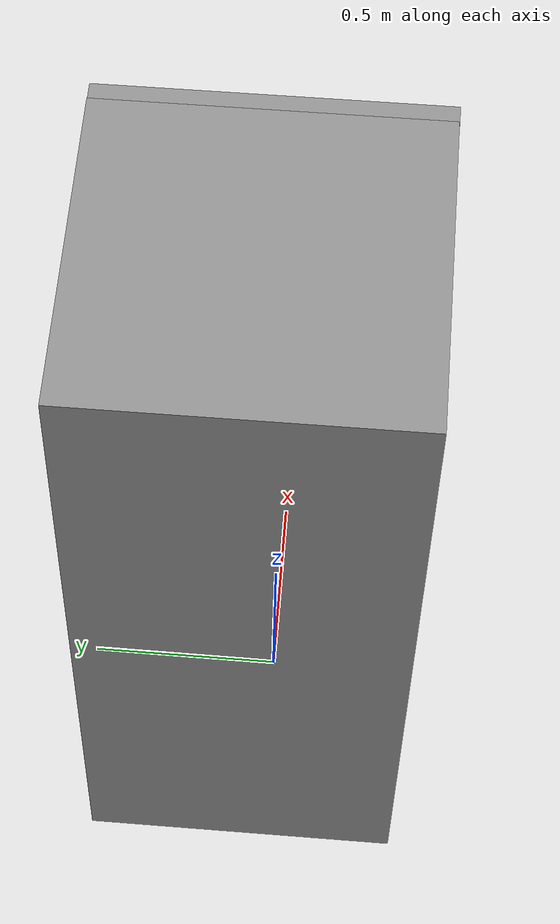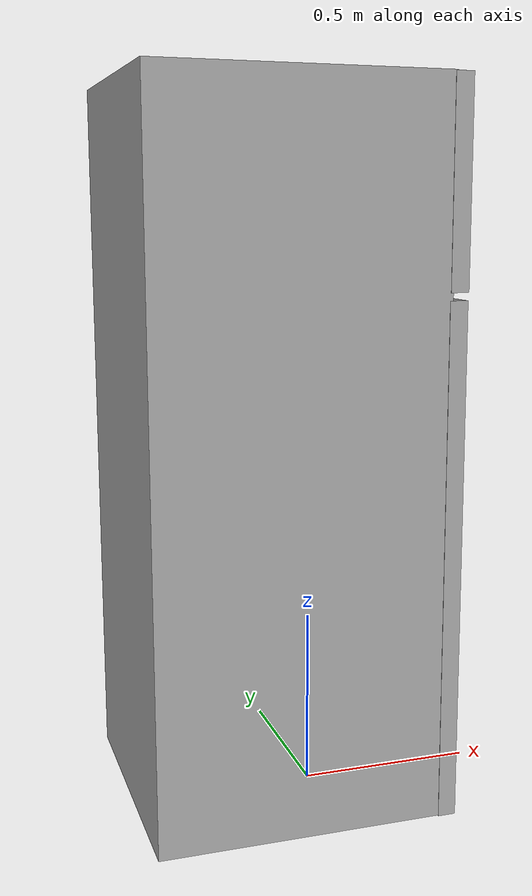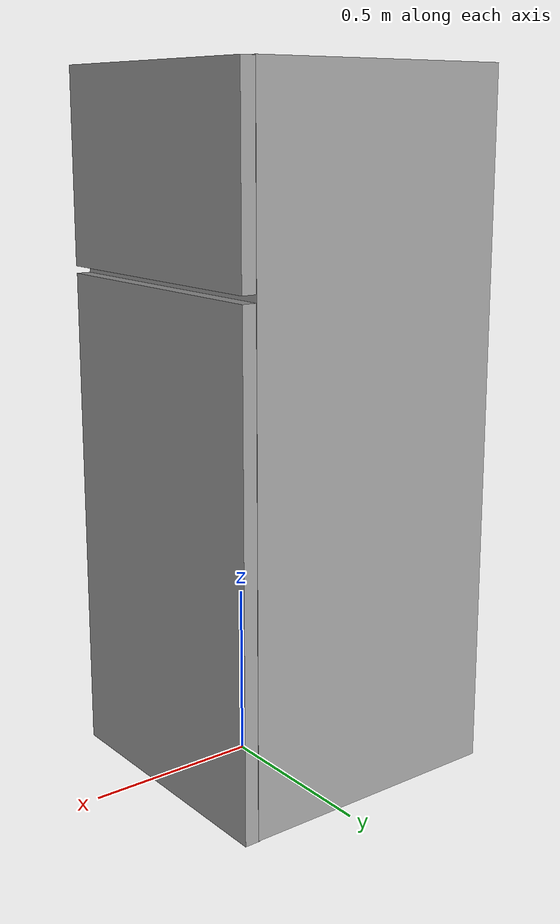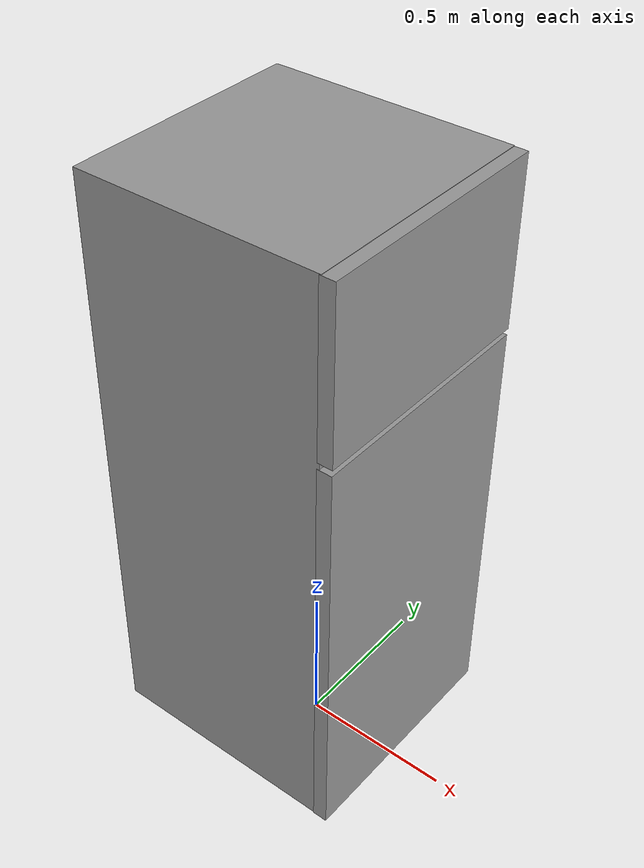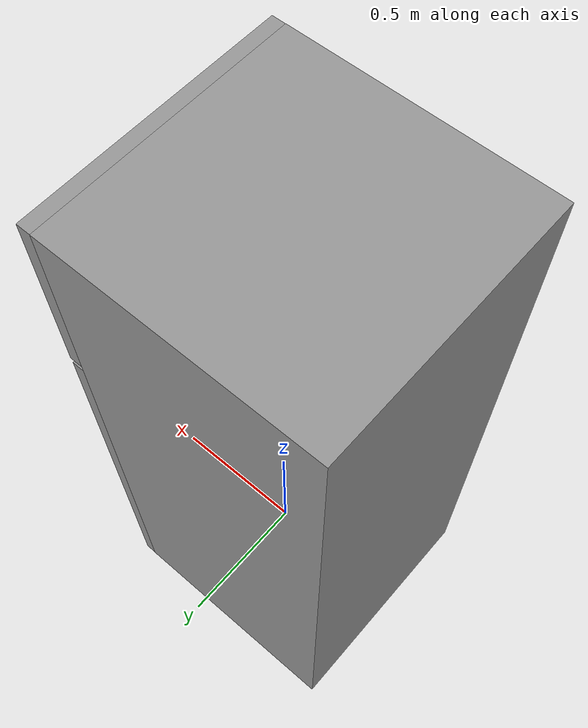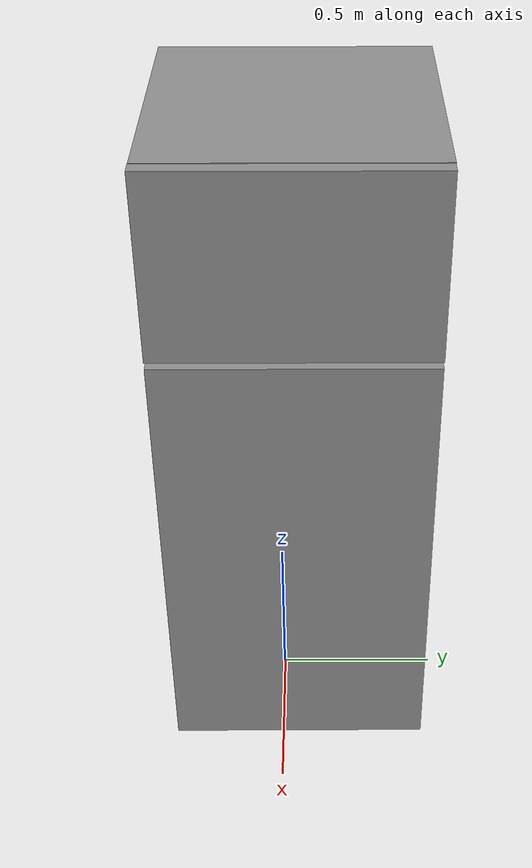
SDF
<?xml version='1.0'?>
<sdf version='1.7'>
  <model name='my_fridge'>
    <link name='link'>
      <inertial>
        <mass>1</mass>
        <inertia>
          <ixx>0.166667</ixx>
          <ixy>0</ixy>
          <ixz>0</ixz>
          <iyy>0.166667</iyy>
          <iyz>0</iyz>
          <izz>0.166667</izz>
        </inertia>
        <pose>0 0 0 0 -0 0</pose>
      </inertial>
      <self_collide>0</self_collide>
      <enable_wind>0</enable_wind>
      <kinematic>0</kinematic>
      <pose>-0.12412 0.053369 0.101591 0 -0 0</pose>
      <gravity>1</gravity>
      <visual name='visual'>
        <geometry>
          <box>
            <size>0.8 0.8 2</size>
          </box>
        </geometry>
        <material>
          <script>
            <name>Gazebo/Grey</name>
            <uri>file://media/materials/scripts/gazebo.material</uri>
          </script>
          <shader type='pixel'>
            <normal_map>__default__</normal_map>
          </shader>
          <ambient>0.9 0.9 0.9 1</ambient>
          <diffuse>0.9 0.9 0.9 1</diffuse>
          <specular>0.01 0.01 0.01 1</specular>
          <emissive>0 0 0 1</emissive>
        </material>
        <pose>0 0 0.9 0 -0 0</pose>
        <transparency>0</transparency>
        <cast_shadows>1</cast_shadows>
      </visual>
      <collision name='collision'>
        <laser_retro>0</laser_retro>
        <max_contacts>10</max_contacts>
        <pose>0 0 0.9 0 -0 0</pose>
        <geometry>
          <box>
            <size>0.8 0.8 2</size>
          </box>
        </geometry>
        <surface>
          <friction>
            <ode>
              <mu>1</mu>
              <mu2>1</mu2>
              <fdir1>0 0 0</fdir1>
              <slip1>0</slip1>
              <slip2>0</slip2>
            </ode>
            <torsional>
              <coefficient>1</coefficient>
              <patch_radius>0</patch_radius>
              <surface_radius>0</surface_radius>
              <use_patch_radius>1</use_patch_radius>
              <ode>
                <slip>0</slip>
              </ode>
            </torsional>
          </friction>
          <bounce>
            <restitution_coefficient>0</restitution_coefficient>
            <threshold>1e+06</threshold>
          </bounce>
          <contact>
            <collide_without_contact>0</collide_without_contact>
            <collide_without_contact_bitmask>1</collide_without_contact_bitmask>
            <collide_bitmask>1</collide_bitmask>
            <ode>
              <soft_cfm>0</soft_cfm>
              <soft_erp>0.2</soft_erp>
              <kp>1e+13</kp>
              <kd>1</kd>
              <max_vel>0.01</max_vel>
              <min_depth>0</min_depth>
            </ode>
            <bullet>
              <split_impulse>1</split_impulse>
              <split_impulse_penetration_threshold>-0.01</split_impulse_penetration_threshold>
              <soft_cfm>0</soft_cfm>
              <soft_erp>0.2</soft_erp>
              <kp>1e+13</kp>
              <kd>1</kd>
            </bullet>
          </contact>
        </surface>
      </collision>
    </link>
    <link name='link_clone_0_clone_0'>
      <inertial>
        <mass>1</mass>
        <inertia>
          <ixx>0.166667</ixx>
          <ixy>0</ixy>
          <ixz>0</ixz>
          <iyy>0.166667</iyy>
          <iyz>0</iyz>
          <izz>0.166667</izz>
        </inertia>
        <pose>0 0 0 0 -0 0</pose>
      </inertial>
      <self_collide>0</self_collide>
      <enable_wind>0</enable_wind>
      <kinematic>0</kinematic>
      <pose>0.292284 0.052276 -0.185669 0 -0 0</pose>
      <gravity>1</gravity>
      <visual name='visual'>
        <geometry>
          <box>
            <size>0.05 0.8 1.43</size>
          </box>
        </geometry>
        <material>
          <script>
            <name>Gazebo/Grey</name>
            <uri>file://media/materials/scripts/gazebo.material</uri>
          </script>
          <shader type='pixel'>
            <normal_map>__default__</normal_map>
          </shader>
          <ambient>0.87 0.87 0.87 1</ambient>
          <diffuse>0.87 0.87 0.87 1</diffuse>
          <specular>0.01 0.01 0.01 1</specular>
          <emissive>0 0 0 1</emissive>
        </material>
        <pose>0 0 0.9 0 -0 0</pose>
        <transparency>0</transparency>
        <cast_shadows>1</cast_shadows>
      </visual>
      <collision name='collision'>
        <laser_retro>0</laser_retro>
        <max_contacts>10</max_contacts>
        <pose>0 0 0.9 0 -0 0</pose>
        <geometry>
          <box>
            <size>0.05 0.8 1.43</size>
          </box>
        </geometry>
        <surface>
          <friction>
            <ode>
              <mu>1</mu>
              <mu2>1</mu2>
              <fdir1>0 0 0</fdir1>
              <slip1>0</slip1>
              <slip2>0</slip2>
            </ode>
            <torsional>
              <coefficient>1</coefficient>
              <patch_radius>0</patch_radius>
              <surface_radius>0</surface_radius>
              <use_patch_radius>1</use_patch_radius>
              <ode>
                <slip>0</slip>
              </ode>
            </torsional>
          </friction>
          <bounce>
            <restitution_coefficient>0</restitution_coefficient>
            <threshold>1e+06</threshold>
          </bounce>
          <contact>
            <collide_without_contact>0</collide_without_contact>
            <collide_without_contact_bitmask>1</collide_without_contact_bitmask>
            <collide_bitmask>1</collide_bitmask>
            <ode>
              <soft_cfm>0</soft_cfm>
              <soft_erp>0.2</soft_erp>
              <kp>1e+13</kp>
              <kd>1</kd>
              <max_vel>0.01</max_vel>
              <min_depth>0</min_depth>
            </ode>
            <bullet>
              <split_impulse>1</split_impulse>
              <split_impulse_penetration_threshold>-0.01</split_impulse_penetration_threshold>
              <soft_cfm>0</soft_cfm>
              <soft_erp>0.2</soft_erp>
              <kp>1e+13</kp>
              <kd>1</kd>
            </bullet>
          </contact>
        </surface>
      </collision>
    </link>
    <link name='link_clone_0_clone_0_clone'>
      <inertial>
        <mass>1</mass>
        <inertia>
          <ixx>0.166667</ixx>
          <ixy>0</ixy>
          <ixz>0</ixz>
          <iyy>0.166667</iyy>
          <iyz>0</iyz>
          <izz>0.166667</izz>
        </inertia>
        <pose>0 0 0 0 -0 0</pose>
      </inertial>
      <self_collide>0</self_collide>
      <enable_wind>0</enable_wind>
      <kinematic>0</kinematic>
      <pose>0.294013 0.052474 0.824873 0 -0 0</pose>
      <gravity>1</gravity>
      <visual name='visual'>
        <geometry>
          <box>
            <size>0.05 0.8 0.55</size>
          </box>
        </geometry>
        <material>
          <script>
            <name>Gazebo/Grey</name>
            <uri>file://media/materials/scripts/gazebo.material</uri>
          </script>
          <shader type='pixel'>
            <normal_map>__default__</normal_map>
          </shader>
          <ambient>0.87 0.87 0.87 1</ambient>
          <diffuse>0.87 0.87 0.87 1</diffuse>
          <specular>0.01 0.01 0.01 1</specular>
          <emissive>0 0 0 1</emissive>
        </material>
        <pose>0 0 0.9 0 -0 0</pose>
        <transparency>0</transparency>
        <cast_shadows>1</cast_shadows>
      </visual>
      <collision name='collision'>
        <laser_retro>0</laser_retro>
        <max_contacts>10</max_contacts>
        <pose>0 0 0.9 0 -0 0</pose>
        <geometry>
          <box>
            <size>0.05 0.8 0.55</size>
          </box>
        </geometry>
        <surface>
          <friction>
            <ode>
              <mu>1</mu>
              <mu2>1</mu2>
              <fdir1>0 0 0</fdir1>
              <slip1>0</slip1>
              <slip2>0</slip2>
            </ode>
            <torsional>
              <coefficient>1</coefficient>
              <patch_radius>0</patch_radius>
              <surface_radius>0</surface_radius>
              <use_patch_radius>1</use_patch_radius>
              <ode>
                <slip>0</slip>
              </ode>
            </torsional>
          </friction>
          <bounce>
            <restitution_coefficient>0</restitution_coefficient>
            <threshold>1e+06</threshold>
          </bounce>
          <contact>
            <collide_without_contact>0</collide_without_contact>
            <collide_without_contact_bitmask>1</collide_without_contact_bitmask>
            <collide_bitmask>1</collide_bitmask>
            <ode>
              <soft_cfm>0</soft_cfm>
              <soft_erp>0.2</soft_erp>
              <kp>1e+13</kp>
              <kd>1</kd>
              <max_vel>0.01</max_vel>
              <min_depth>0</min_depth>
            </ode>
            <bullet>
              <split_impulse>1</split_impulse>
              <split_impulse_penetration_threshold>-0.01</split_impulse_penetration_threshold>
              <soft_cfm>0</soft_cfm>
              <soft_erp>0.2</soft_erp>
              <kp>1e+13</kp>
              <kd>1</kd>
            </bullet>
          </contact>
        </surface>
      </collision>
    </link>
    <static>1</static>
    <allow_auto_disable>1</allow_auto_disable>
  </model>
</sdf>
